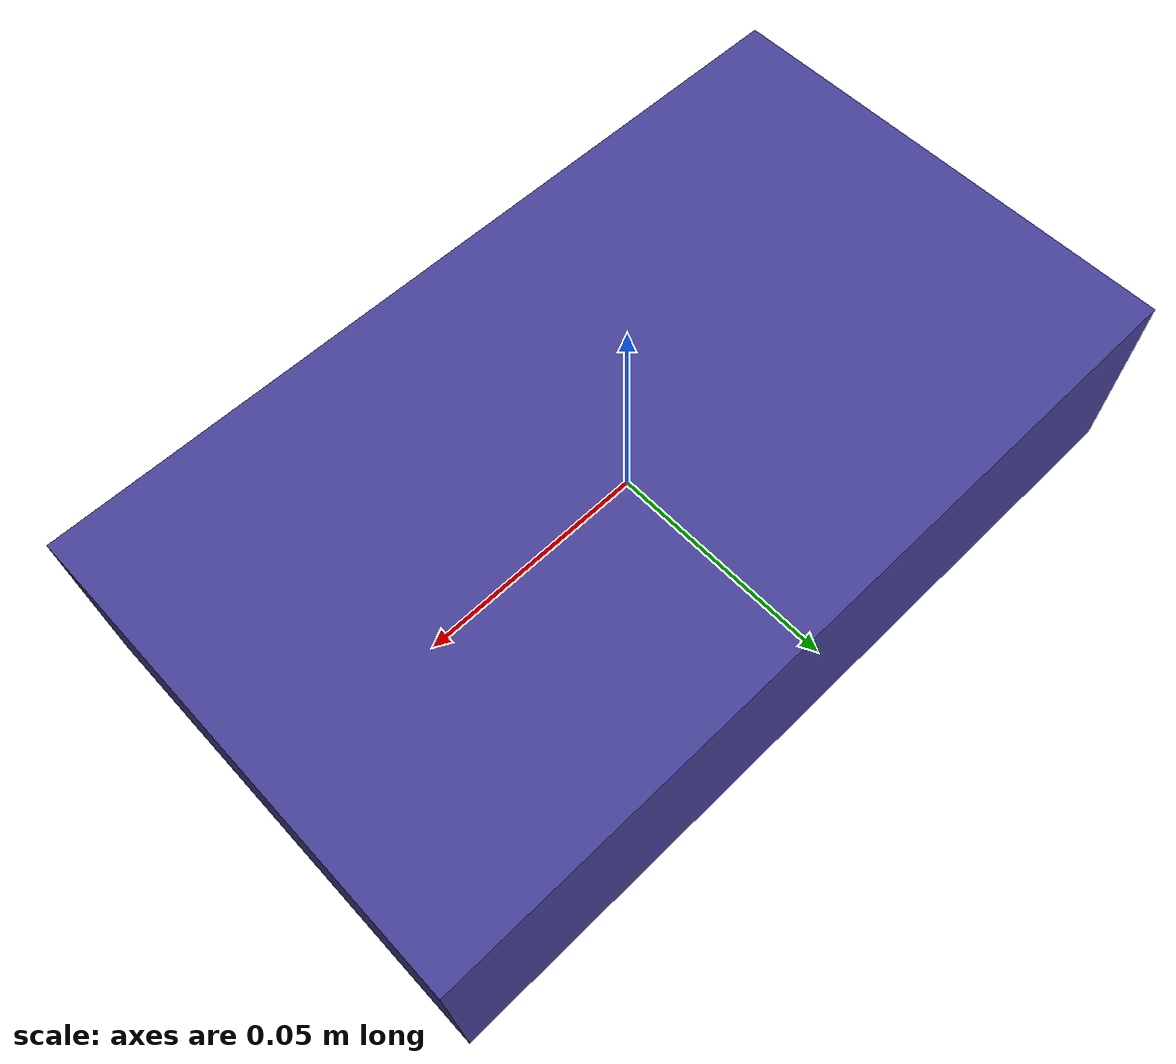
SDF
<sdf version="1.7">
  <model name="blue_berry_box_small">
    <link name="base_link">
      <inertial>
        <mass>0.25</mass>
        <inertia>
          <ixx>2.719e-04</ixx>
          <ixy>0.000e+00</ixy>
          <ixz>0.000e+00</ixz>
          <iyy>7.172e-04</iyy>
          <iyz>0.000e+00</iyz>
          <izz>9.047e-04</izz>
        </inertia>
      </inertial>
      <visual name="blue_berry_box_small_visual">
        <geometry>
          <box>
            <size>0.18 0.105 0.045</size>
          </box>
        </geometry>
        <material>
          <diffuse>0.27 0.25 0.59 1.0</diffuse>
        </material>
      </visual>
      <collision name="body">
        <geometry>
          <box>
            <size>0.178 0.103 0.043</size>
          </box>
        </geometry>
      </collision>
      <collision name="corner_0">
        <pose>-0.09 -0.0525 -0.0225 0 0 0</pose>
        <geometry>
          <sphere>
            <radius>0.001</radius>
          </sphere>
        </geometry>
      </collision>
      <collision name="corner_1">
        <pose>-0.09 -0.0525 0.0225 0 0 0</pose>
        <geometry>
          <sphere>
            <radius>0.001</radius>
          </sphere>
        </geometry>
      </collision>
      <collision name="corner_2">
        <pose>-0.09 0.0525 -0.0225 0 0 0</pose>
        <geometry>
          <sphere>
            <radius>0.001</radius>
          </sphere>
        </geometry>
      </collision>
      <collision name="corner_3">
        <pose>-0.09 0.0525 0.0225 0 0 0</pose>
        <geometry>
          <sphere>
            <radius>0.001</radius>
          </sphere>
        </geometry>
      </collision>
      <collision name="corner_4">
        <pose>0.09 -0.0525 -0.0225 0 0 0</pose>
        <geometry>
          <sphere>
            <radius>0.001</radius>
          </sphere>
        </geometry>
      </collision>
      <collision name="corner_5">
        <pose>0.09 -0.0525 0.0225 0 0 0</pose>
        <geometry>
          <sphere>
            <radius>0.001</radius>
          </sphere>
        </geometry>
      </collision>
      <collision name="corner_6">
        <pose>0.09 0.0525 -0.0225 0 0 0</pose>
        <geometry>
          <sphere>
            <radius>0.001</radius>
          </sphere>
        </geometry>
      </collision>
      <collision name="corner_7">
        <pose>0.09 0.0525 0.0225 0 0 0</pose>
        <geometry>
          <sphere>
            <radius>0.001</radius>
          </sphere>
        </geometry>
      </collision>
    </link>
  </model>
</sdf>
